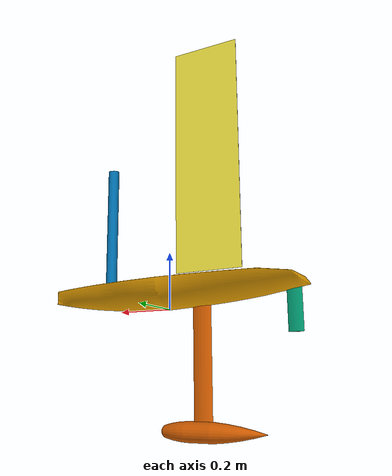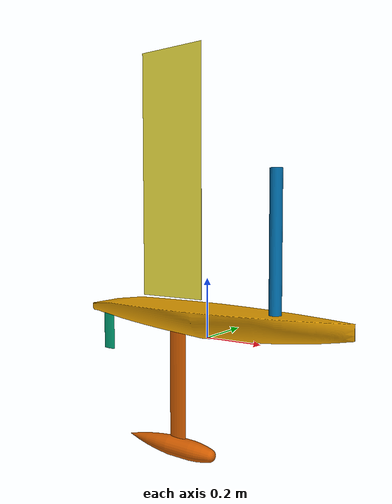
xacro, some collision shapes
<?xml version="1.0"?>
<robot name="autosail_base" xmlns:xacro="http://www.ros.org/wiki/xacro">
	<xacro:property name="PI" value="3.1415926535897931"/>

	<!-- Body properties:global variables  -->
	<xacro:arg name="locked" default="false" />
	<xacro:arg name="windType" default="global" />
	<xacro:arg name="waterType" default="global" />
	<xacro:property name="windType" value="$(arg windType)" />
	<xacro:property name="waterType" value="$(arg waterType)" />
	<xacro:arg name="namespace" default="sailboat"/>
  	<xacro:property name="namespace" value="$(arg namespace)" scope="global" />

	<!--Bote-->
	<link name="${namespace}/base_link">
		<visual>
			<geometry>
				 <mesh filename="/home/camilo/autosail_ws/src/autosail_urdf/autosail_description/meshes/sailboat.dae"/>
			</geometry>
			<origin rpy="0 0 1.570796327" xyz="0 0 0"/>
		</visual>
		<collision>
			<geometry>
				<box size="0.45 0.75 0.075"/>
			</geometry>
			<origin rpy="0 0 1.570796327" xyz="0 0 0.05"/>
		</collision>
		<inertial>
			<origin rpy="0 0 1.570796327" xyz="0 0 0.05"/>
			<mass value="2.5"/>
			<inertia ixx="0.043359375" ixy="0.0" ixz="0.0" iyy="0.118359375" iyz="0.0" izz="0.15937500000000002"/>
       	</inertial>

	</link>
	<link name="${namespace}/secondary_link">
		<inertial>
			<mass value="0.5"/>
			<inertia ixx="0.0178125" ixy="0.0" ixz="0.0" iyy="0.0178125" iyz="0.0" izz="0.005625"/>
			<origin rpy="0 1.570796327 0" xyz="0 0 0.01"/>
		</inertial>
		<collision>
			<geometry>
				<cylinder radius="0.15" length="0.6"/>
			</geometry>
			<origin rpy="0 1.570796327 0" xyz="0 0 0.01"/>
		</collision>
	</link>

	<!--Engranaje -->
	<joint name="${namespace}/rudder_joint" type="revolute">
		<parent link="${namespace}/base_link"/>
		<child link="${namespace}/rudder_link"/>
		<origin rpy="0 0 0" xyz="-0.45 0 0"/>
		<dynamics damping="10.0"/>
		<axis xyz="0 0 1"/>
		<limit effort="50" velocity="40" lower="-1.57" upper="1.57"/>
	</joint>

	<link name="${namespace}/rudder_link">
		<visual>
			<geometry>
				<mesh filename="/home/camilo/autosail_ws/src/autosail_urdf/autosail_description/meshes/direccion.dae"/>
			</geometry>
			<origin rpy="0 0 1.570796327" xyz="0 0 0.05"/>
			<!--origin rpy="0 0 0" xyz="-0.25 0 0"/-->
		</visual>
		<collision>
			<geometry>
				<box size="0.05 0.01 0.15"/>
			</geometry>
			<origin rpy="0 0 0" xyz="0 0 -0.025"/>
		</collision>
		<inertial>
			<origin rpy="0 0 0" xyz="0 0 0"/>
			<mass value="0.2"/>
			<inertia ixx="0.00009875" ixy="0.0" ixz="0.0" iyy="0.00009875" iyz="0.0" izz="0.00001"/>
       	</inertial>
	</link>

	<!--Vela principal-->
	<joint name="${namespace}/main_sail_joint" type="revolute">
		<parent link="${namespace}/base_link"/>
		<child link="${namespace}/main_sail_link"/>
		<origin rpy="0 0 0" xyz="0 0 0.05"/>
		<dynamics damping="10.0"/>
		<axis xyz="0 0 1"/>
		<limit effort="50" velocity="40" lower="-1.57" upper="1.57"/>
	</joint>
	<link name="${namespace}/main_sail_link">
		<visual>
			<geometry>
				<mesh filename="/home/camilo/autosail_ws/src/autosail_urdf/autosail_description/meshes/vela.dae"/>
			</geometry>
			<origin rpy="0 0 1.570796327" xyz="0 0 -0.15"/>

		</visual>
		<collision>
			<geometry>
				<box size="0.25 0.001 0.85"/>
			</geometry>
			<origin rpy="0 0 0" xyz="-0.15 0 0.5"/>
		</collision>
		<inertial>
			<mass value="0.5"/>
			<inertia ixx="0.010466667" ixy="0.0" ixz="0.0" iyy="0.010466667" iyz="0.0" izz="0.0001"/>
       	</inertial>

	</link>

 	<!--Vela Secundaria-->
	<joint name="${namespace}/secondary_sail_joint" type="revolute">
		<parent link="${namespace}/base_link"/>
		<child link="${namespace}/secondary_sail_link"/>
		<origin rpy="0 0 0" xyz="0.25 0 0.05"/>
		<dynamics damping="10.0"/><!--damping=amortiguamiento-->
		<axis xyz="0 0 1"/>
		<limit effort="50" velocity="40" lower="-1.57" upper="1.57" />
	</joint>
	<link name="${namespace}/secondary_sail_link">
		<visual>
			<geometry>
				<cylinder length="0.5" radius="0.02"/>
			</geometry>
			<origin rpy="0 0 0" xyz="0 0 0.25"/>
		</visual>
		<collision>
			<geometry>
				<cylinder length="0.5" radius="0.02"/>
			</geometry>
			<origin rpy="0 0 0" xyz="0 0 0.25"/>
		</collision>
		<inertial>
			<origin rpy="0 0 0" xyz="0 0 0.25"/>
			<mass value="0.45"/>
			<inertia ixx="0.010466667" ixy="0.0" ixz="0.0" iyy="0.010466667" iyz="0.0" izz="0.0001"/>
       	</inertial>
	</link>

	<!-- Quilla -->
	<joint name="${namespace}/keel_joint" type="revolute">
		<parent link="${namespace}/base_link"/>
		<child link="${namespace}/keel_link"/>
		<origin rpy="0 0 0" xyz="-0.125 0 0"/>
		<dynamics damping="10.0"/>
		<axis xyz="0 0 1"/>
		<limit effort="50" velocity="40" lower="-0.001" upper="0.001"/>
	</joint>
	<joint name="${namespace}/keel_joint2" type="revolute">
		<parent link="${namespace}/base_link"/>
		<child link="${namespace}/keel_link2"/>
		<origin rpy="0 0 0" xyz="-0.125 0 0"/>
		<dynamics damping="10.0"/>
		<axis xyz="0 0 1"/>
		<limit effort="50" velocity="40" lower="-1.57" upper="1.57"/>
	</joint>
	<joint name="${namespace}/secondary_joint" type="revolute">
		<parent link="${namespace}/base_link"/>
		<child link="${namespace}/secondary_link"/>
		<origin rpy="0 0 0" xyz="0 0 0"/>
		<dynamics damping="10.0" friction="1"/>
		<axis xyz="0 0 1"/>
		<limit effort="50" velocity="40" lower="-0.001" upper="0.001"/>
	</joint>
	<link name="${namespace}/keel_link">
		<visual>
			<geometry>
				<mesh filename="/home/camilo/autosail_ws/src/autosail_urdf/autosail_description/meshes/quilla.dae" scale="1.5 1.5 1.5"/>
			</geometry>
			<origin rpy="0 0 1.570796327" xyz="0 0 0.05"/>

		</visual>
		<collision>
			<geometry>
				<cylinder length="0.24" radius="0.015"/>
			</geometry>
			<origin rpy="0 1.570796327 0" xyz="0 0 -0.4"/>
		</collision>
		<inertial>
			<origin rpy="0 1.570796327 0" xyz="0 0 -0.5"/>
			<mass value="1.5"/>
			<inertia ixx="0.007284375" ixy="0.0" ixz="0.0" iyy="0.007284375" iyz="0.0" izz="0.00016875"/>
       	</inertial>
	</link>
	<link name="${namespace}/keel_link2">
		<collision>
			<geometry>
				<box size="0.05 0.01 0.4"/>
			</geometry>
			<origin rpy="0 0 0" xyz="0 0 -0.2"/>
		</collision>
		<inertial>
			<origin rpy="0 0 0" xyz="0 0 -0.4"/>
			<mass value="0.1"/>
			<inertia ixx="0.0013341666666666669" ixy="0.0" ixz="0.0" iyy="0.001354166666666667" iyz="0.0" izz="2.166666666666667e-05"/>
       	</inertial>
	</link>
	<gazebo>
		<plugin filename="gz-sim-joint-position-controller-system" name="gz::sim::systems::JointPositionController">
			<joint_name>${namespace}/rudder_joint</joint_name>
			<p_gain>0.1</p_gain>
			<topic>rudder_joint</topic>
			<!-- this will change gazebo topic to a topic understandable to ROS end -->
		</plugin>
		<plugin filename="gz-sim-joint-position-controller-system" name="gz::sim::systems::JointPositionController">
			<joint_name>${namespace}/main_sail_joint</joint_name>
			<p_gain>0.1</p_gain>
			<topic>main_sail_joint</topic>
		</plugin>
		<plugin filename="gz-sim-joint-position-controller-system" name="gz::sim::systems::JointPositionController">
			<joint_name>${namespace}/secondary_sail_joint</joint_name>
			<p_gain>0.1</p_gain>
			<topic>secondary_sail_joint</topic>
		</plugin>
	</gazebo>
	<gazebo reference="${namespace}/base_link">
		<visual>
			<material>
					<ambient>0.0 0.0 1.0 1</ambient>
					<diffuse>0.0 0.0 1.0 1</diffuse>
					<specular>0.0 0.0 1.0 1</specular>
			</material>
		</visual>
		<sensor type="contact" name="contact_sensor">
			<contact>
				<!-- collisions are renamed during urdf -> sdf fixed joint lumping -->
				<collision>${namespace}/base_link_fixed_joint_lump__sailboat/keel_link_collision_1</collision>
				<topic>/autosail/contacts</topic>
			</contact>
			<always_on>1</always_on>
			<update_rate>5</update_rate>
		</sensor>
		<sensor name="magnetometer" type="magnetometer">
          <always_on>1</always_on>
          <update_rate>60</update_rate>
          <visualize>true</visualize>
          <topic>magnetometer</topic>
          <enable_metrics>true</enable_metrics>
          <magnetometer>
            <x>
              <noise type="gaussian">
                <mean>0.0</mean>
                <stddev>0.0001</stddev>
              </noise>
            </x>
            <y>
              <noise type="gaussian">
                <mean>0.0</mean>
                <stddev>0.0001</stddev>
              </noise>
            </y>
            <z>
              <noise type="gaussian">
                <mean>0.0</mean>
                <stddev>0.0001</stddev>
              </noise>
            </z>
          </magnetometer>
        </sensor>
	</gazebo>
	<gazebo reference="${namespace}/main_sail_link">
		<visual>
			<material>
					<ambient>0.0 0.0 1.0 1</ambient>
					<diffuse>0.0 0.0 1.0 1</diffuse>
					<specular>0.0 0.0 1.0 1</specular>
			</material>
		</visual>
		<enable_wind>true</enable_wind>
  	</gazebo>
	<gazebo reference="${namespace}/rudder_link">
		<visual>
			<material>
					<ambient>0.0 0.0 1.0 1</ambient>
					<diffuse>0.0 0.0 1.0 1</diffuse>
					<specular>0.0 0.0 1.0 1</specular>
			</material>
		</visual>
		<enable_wind>false</enable_wind>
  	</gazebo>
	<gazebo reference="${namespace}/keel_link">
		<visual>
			<material>
					<ambient>0.0 0.0 1.0 1</ambient>
					<diffuse>0.0 0.0 1.0 1</diffuse>
					<specular>0.0 0.0 1.0 1</specular>
			</material>
		</visual>

		<self_collide>false</self_collide>
  	</gazebo>
	<gazebo reference="${namespace}/keel_link2">
		<self_collide>false</self_collide>
  	</gazebo>
	<gazebo reference="${namespace}/secondary_link">
		<self_collide>false</self_collide>
		<enable_wind>false</enable_wind>
	</gazebo>
</robot>
